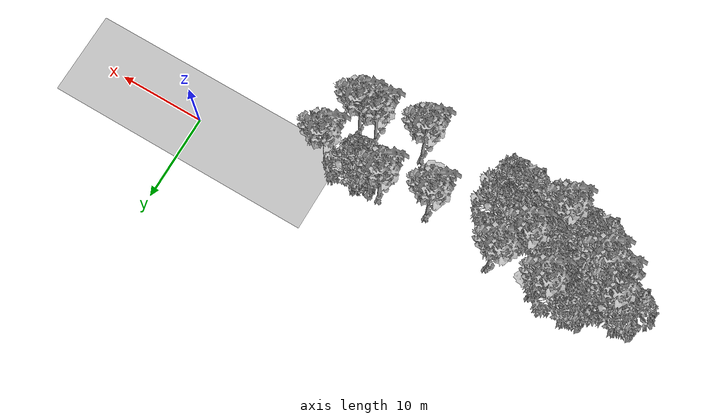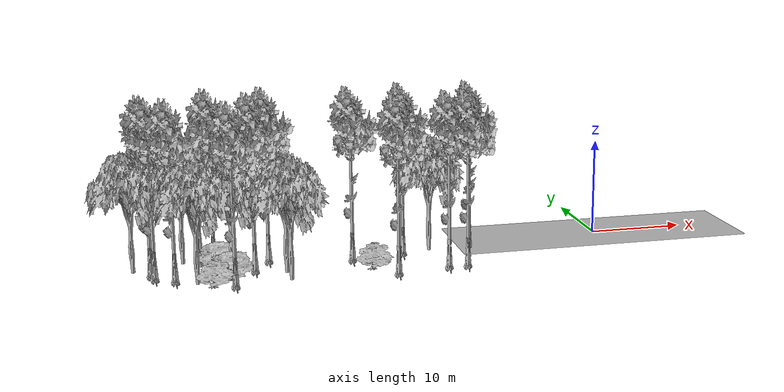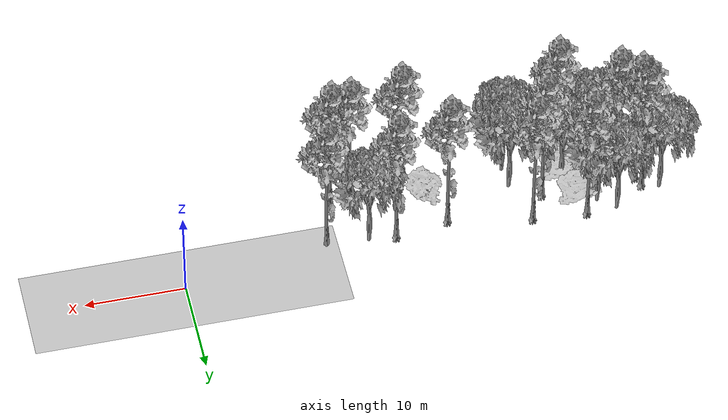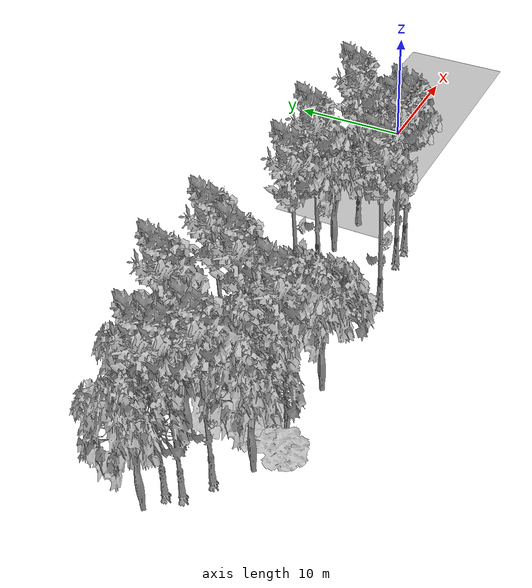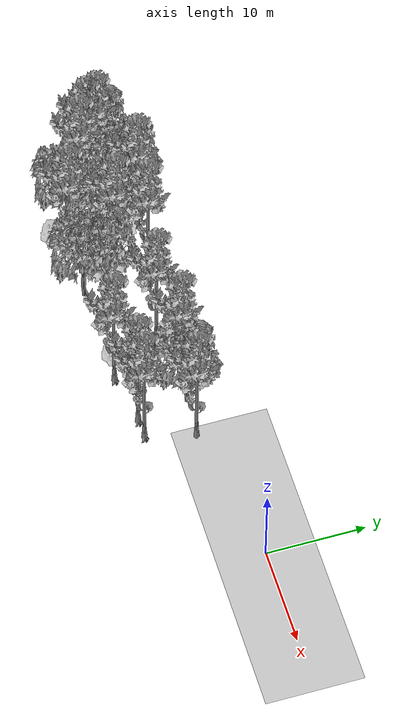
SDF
<sdf version="1.7">
 <world name="default">
  <model name="ground_plane">
   <static>1</static>
   <link name="link">
    <collision name="collision">
     <pose>-50 0 0 0 -0 0</pose>
     <geometry><plane><normal>0 0 1</normal><size>100 100</size></plane></geometry>
     <surface><contact><ode><min_depth>0.01</min_depth><max_vel>0</max_vel></ode></contact></surface>
    </collision>
    <visual name="grass">
     <cast_shadows>0</cast_shadows>
     <geometry>
      <mesh>
       <scale>0.5814285714285714 0.18142857142857144 0.1</scale>
       <uri>file://grass_plane/meshes/grass_plane.dae</uri>
      </mesh>
     </geometry>
    </visual>
   </link>
  </model>
  <model name="Tree 24">
   <static>1</static>
   <pose>-39.09942627719493 -8.45320884123564 0 1.57079 -0 0</pose>
   <link name="link">
    <collision name="collision">
     <geometry><mesh><scale>3.5 5 3.5</scale><uri>model://tree_9/meshes/tree_9.obj</uri></mesh></geometry>
    </collision>
    <visual name="visual">
     <geometry><mesh><scale>3.5 5 3.5</scale><uri>model://tree_9/meshes/tree_9.obj</uri></mesh></geometry>
    </visual>
   </link>
  </model>
  <model name="Tree 41">
   <static>1</static>
   <pose>-34.03368638921799 -6.184196471472539 0 1.57079 -0 0</pose>
   <link name="link">
    <collision name="collision">
     <geometry><mesh><scale>3.5 5 3.5</scale><uri>model://tree_2/meshes/tree_2.obj</uri></mesh></geometry>
    </collision>
    <visual name="visual">
     <geometry><mesh><scale>3.5 5 3.5</scale><uri>model://tree_2/meshes/tree_2.obj</uri></mesh></geometry>
    </visual>
   </link>
  </model>
  <model name="Tree 57">
   <static>1</static>
   <pose>-42.6671961907829 -7.720742618789485 0 1.57079 -0 0</pose>
   <link name="link">
    <collision name="collision">
     <geometry><mesh><scale>3.5 5 3.5</scale><uri>model://tree_2/meshes/tree_2.obj</uri></mesh></geometry>
    </collision>
    <visual name="visual">
     <geometry><mesh><scale>3.5 5 3.5</scale><uri>model://tree_2/meshes/tree_2.obj</uri></mesh></geometry>
    </visual>
   </link>
  </model>
  <model name="Tree 72">
   <static>1</static>
   <pose>-40.63771143495949 -1.0053927329188088 0 1.57079 -0 0</pose>
   <link name="link">
    <collision name="collision">
     <geometry><mesh><scale>3.5 5 3.5</scale><uri>model://tree_9/meshes/tree_9.obj</uri></mesh></geometry>
    </collision>
    <visual name="visual">
     <geometry><mesh><scale>3.5 5 3.5</scale><uri>model://tree_9/meshes/tree_9.obj</uri></mesh></geometry>
    </visual>
   </link>
  </model>
  <model name="Tree 81">
   <static>1</static>
   <pose>-25.676209947012474 -6.921489711068654 0 1.57079 -0 0</pose>
   <link name="link">
    <collision name="collision">
     <geometry><mesh><scale>4 2.5 4</scale><uri>model://tree_1/meshes/tree_1.obj</uri></mesh></geometry>
    </collision>
    <visual name="visual">
     <geometry><mesh><scale>4 2.5 4</scale><uri>model://tree_1/meshes/tree_1.obj</uri></mesh></geometry>
    </visual>
   </link>
  </model>
  <model name="Tree 88">
   <static>1</static>
   <pose>-46.84486657020313 -3.442282786717051 0 1.57079 -0 0</pose>
   <link name="link">
    <collision name="collision">
     <geometry><mesh><scale>3.5 5 3.5</scale><uri>model://tree_9/meshes/tree_9.obj</uri></mesh></geometry>
    </collision>
    <visual name="visual">
     <geometry><mesh><scale>3.5 5 3.5</scale><uri>model://tree_9/meshes/tree_9.obj</uri></mesh></geometry>
    </visual>
   </link>
  </model>
  <model name="Tree 99">
   <static>1</static>
   <pose>-21.54494120833283 -2.12962227935072 0 1.57079 -0 0</pose>
   <link name="link">
    <collision name="collision">
     <geometry><mesh><scale>3.5 5 3.5</scale><uri>model://tree_9/meshes/tree_9.obj</uri></mesh></geometry>
    </collision>
    <visual name="visual">
     <geometry><mesh><scale>3.5 5 3.5</scale><uri>model://tree_9/meshes/tree_9.obj</uri></mesh></geometry>
    </visual>
   </link>
  </model>
  <model name="Tree 122">
   <static>1</static>
   <pose>-18.00463263849604 -7.511081462929977 0 1.57079 -0 0</pose>
   <link name="link">
    <collision name="collision">
     <geometry><mesh><scale>3.5 5 3.5</scale><uri>model://tree_9/meshes/tree_9.obj</uri></mesh></geometry>
    </collision>
    <visual name="visual">
     <geometry><mesh><scale>3.5 5 3.5</scale><uri>model://tree_9/meshes/tree_9.obj</uri></mesh></geometry>
    </visual>
   </link>
  </model>
  <model name="Tree 186">
   <static>1</static>
   <pose>-36.855972480366766 -4.3054655196853595 0 1.57079 -0 0</pose>
   <link name="link">
    <collision name="collision">
     <geometry><mesh><scale>3.5 5 3.5</scale><uri>model://tree_9/meshes/tree_9.obj</uri></mesh></geometry>
    </collision>
    <visual name="visual">
     <geometry><mesh><scale>3.5 5 3.5</scale><uri>model://tree_9/meshes/tree_9.obj</uri></mesh></geometry>
    </visual>
   </link>
  </model>
  <model name="Tree 187">
   <static>1</static>
   <pose>-46.4879701145275 -4.57327797171679 0 1.57079 -0 0</pose>
   <link name="link">
    <collision name="collision">
     <geometry><mesh><scale>3.5 5 3.5</scale><uri>model://tree_9/meshes/tree_9.obj</uri></mesh></geometry>
    </collision>
    <visual name="visual">
     <geometry><mesh><scale>3.5 5 3.5</scale><uri>model://tree_9/meshes/tree_9.obj</uri></mesh></geometry>
    </visual>
   </link>
  </model>
  <model name="Tree 188">
   <static>1</static>
   <pose>-40.32552375275321 -3.486980614300103 0 1.57079 -0 0</pose>
   <link name="link">
    <collision name="collision">
     <geometry><mesh><scale>3 2 3</scale><uri>model://tree_3/meshes/tree_3.obj</uri></mesh></geometry>
    </collision>
    <visual name="visual">
     <geometry><mesh><scale>3 2 3</scale><uri>model://tree_3/meshes/tree_3.obj</uri></mesh></geometry>
    </visual>
   </link>
  </model>
  <model name="Tree 189">
   <static>1</static>
   <pose>-39.22169961114248 -5.622938220764539 0 1.57079 -0 0</pose>
   <link name="link">
    <collision name="collision">
     <geometry><mesh><scale>3.5 5 3.5</scale><uri>model://tree_2/meshes/tree_2.obj</uri></mesh></geometry>
    </collision>
    <visual name="visual">
     <geometry><mesh><scale>3.5 5 3.5</scale><uri>model://tree_2/meshes/tree_2.obj</uri></mesh></geometry>
    </visual>
   </link>
  </model>
  <model name="Tree 193">
   <static>1</static>
   <pose>-23.29816096992576 -8.390456981113125 0 1.57079 -0 0</pose>
   <link name="link">
    <collision name="collision">
     <geometry><mesh><scale>3.5 5 3.5</scale><uri>model://tree_9/meshes/tree_9.obj</uri></mesh></geometry>
    </collision>
    <visual name="visual">
     <geometry><mesh><scale>3.5 5 3.5</scale><uri>model://tree_9/meshes/tree_9.obj</uri></mesh></geometry>
    </visual>
   </link>
  </model>
  <model name="Tree 200">
   <static>1</static>
   <pose>-26.936012748209922 -3.013335881092413 0 1.57079 -0 0</pose>
   <link name="link">
    <collision name="collision">
     <geometry><mesh><scale>3.5 5 3.5</scale><uri>model://tree_9/meshes/tree_9.obj</uri></mesh></geometry>
    </collision>
    <visual name="visual">
     <geometry><mesh><scale>3.5 5 3.5</scale><uri>model://tree_9/meshes/tree_9.obj</uri></mesh></geometry>
    </visual>
   </link>
  </model>
  <model name="Tree 201">
   <static>1</static>
   <pose>-48.60167458066051 -2.8427448057065963 0 1.57079 -0 0</pose>
   <link name="link">
    <collision name="collision">
     <geometry><mesh><scale>3.5 5 3.5</scale><uri>model://tree_2/meshes/tree_2.obj</uri></mesh></geometry>
    </collision>
    <visual name="visual">
     <geometry><mesh><scale>3.5 5 3.5</scale><uri>model://tree_2/meshes/tree_2.obj</uri></mesh></geometry>
    </visual>
   </link>
  </model>
  <model name="Tree 210">
   <static>1</static>
   <pose>-43.76699471104789 -1.0338323989552567 0 1.57079 -0 0</pose>
   <link name="link">
    <collision name="collision">
     <geometry><mesh><scale>3.5 5 3.5</scale><uri>model://tree_2/meshes/tree_2.obj</uri></mesh></geometry>
    </collision>
    <visual name="visual">
     <geometry><mesh><scale>3.5 5 3.5</scale><uri>model://tree_2/meshes/tree_2.obj</uri></mesh></geometry>
    </visual>
   </link>
  </model>
  <model name="Tree 226">
   <static>1</static>
   <pose>-18.925295618480643 -2.299302671937687 0 1.57079 -0 0</pose>
   <link name="link">
    <collision name="collision">
     <geometry><mesh><scale>3.5 5 3.5</scale><uri>model://tree_2/meshes/tree_2.obj</uri></mesh></geometry>
    </collision>
    <visual name="visual">
     <geometry><mesh><scale>3.5 5 3.5</scale><uri>model://tree_2/meshes/tree_2.obj</uri></mesh></geometry>
    </visual>
   </link>
  </model>
  <model name="Tree 228">
   <static>1</static>
   <pose>-39.37400080289589 -7.000668463205374 0 1.57079 -0 0</pose>
   <link name="link">
    <collision name="collision">
     <geometry><mesh><scale>3 2 3</scale><uri>model://tree_3/meshes/tree_3.obj</uri></mesh></geometry>
    </collision>
    <visual name="visual">
     <geometry><mesh><scale>3 2 3</scale><uri>model://tree_3/meshes/tree_3.obj</uri></mesh></geometry>
    </visual>
   </link>
  </model>
  <model name="Tree 234">
   <static>1</static>
   <pose>-42.11471141927171 -2.4385295024826945 0 1.57079 -0 0</pose>
   <link name="link">
    <collision name="collision">
     <geometry><mesh><scale>3.5 5 3.5</scale><uri>model://tree_2/meshes/tree_2.obj</uri></mesh></geometry>
    </collision>
    <visual name="visual">
     <geometry><mesh><scale>3.5 5 3.5</scale><uri>model://tree_2/meshes/tree_2.obj</uri></mesh></geometry>
    </visual>
   </link>
  </model>
  <model name="Tree 235">
   <static>1</static>
   <pose>-14.630936642454124 -2.5775608885515506 0 1.57079 -0 0</pose>
   <link name="link">
    <collision name="collision">
     <geometry><mesh><scale>3.5 5 3.5</scale><uri>model://tree_9/meshes/tree_9.obj</uri></mesh></geometry>
    </collision>
    <visual name="visual">
     <geometry><mesh><scale>3.5 5 3.5</scale><uri>model://tree_9/meshes/tree_9.obj</uri></mesh></geometry>
    </visual>
   </link>
  </model>
  <model name="Tree 238">
   <static>1</static>
   <pose>-16.06421715632154 -7.4411177272277 0 1.57079 -0 0</pose>
   <link name="link">
    <collision name="collision">
     <geometry><mesh><scale>3.5 5 3.5</scale><uri>model://tree_9/meshes/tree_9.obj</uri></mesh></geometry>
    </collision>
    <visual name="visual">
     <geometry><mesh><scale>3.5 5 3.5</scale><uri>model://tree_9/meshes/tree_9.obj</uri></mesh></geometry>
    </visual>
   </link>
  </model>
  <model name="Tree 242">
   <static>1</static>
   <pose>-35.2181971452825 -1.4320096604452601 0 1.57079 -0 0</pose>
   <link name="link">
    <collision name="collision">
     <geometry><mesh><scale>3.5 5 3.5</scale><uri>model://tree_9/meshes/tree_9.obj</uri></mesh></geometry>
    </collision>
    <visual name="visual">
     <geometry><mesh><scale>3.5 5 3.5</scale><uri>model://tree_9/meshes/tree_9.obj</uri></mesh></geometry>
    </visual>
   </link>
  </model>
  <model name="Tree 257">
   <static>1</static>
   <pose>-41.197993583281296 -8.816179251158808 0 1.57079 -0 0</pose>
   <link name="link">
    <collision name="collision">
     <geometry><mesh><scale>4 2.5 4</scale><uri>model://tree_1/meshes/tree_1.obj</uri></mesh></geometry>
    </collision>
    <visual name="visual">
     <geometry><mesh><scale>4 2.5 4</scale><uri>model://tree_1/meshes/tree_1.obj</uri></mesh></geometry>
    </visual>
   </link>
  </model>
  <model name="Tree 266">
   <static>1</static>
   <pose>-44.60391675181636 -5.761151317652223 0 1.57079 -0 0</pose>
   <link name="link">
    <collision name="collision">
     <geometry><mesh><scale>3.5 5 3.5</scale><uri>model://tree_9/meshes/tree_9.obj</uri></mesh></geometry>
    </collision>
    <visual name="visual">
     <geometry><mesh><scale>3.5 5 3.5</scale><uri>model://tree_9/meshes/tree_9.obj</uri></mesh></geometry>
    </visual>
   </link>
  </model>
  <model name="Tree 295">
   <static>1</static>
   <pose>-33.87061751861367 -8.504720967287454 0 1.57079 -0 0</pose>
   <link name="link">
    <collision name="collision">
     <geometry><mesh><scale>3.5 5 3.5</scale><uri>model://tree_2/meshes/tree_2.obj</uri></mesh></geometry>
    </collision>
    <visual name="visual">
     <geometry><mesh><scale>3.5 5 3.5</scale><uri>model://tree_2/meshes/tree_2.obj</uri></mesh></geometry>
    </visual>
   </link>
  </model>
 </world>
</sdf>
